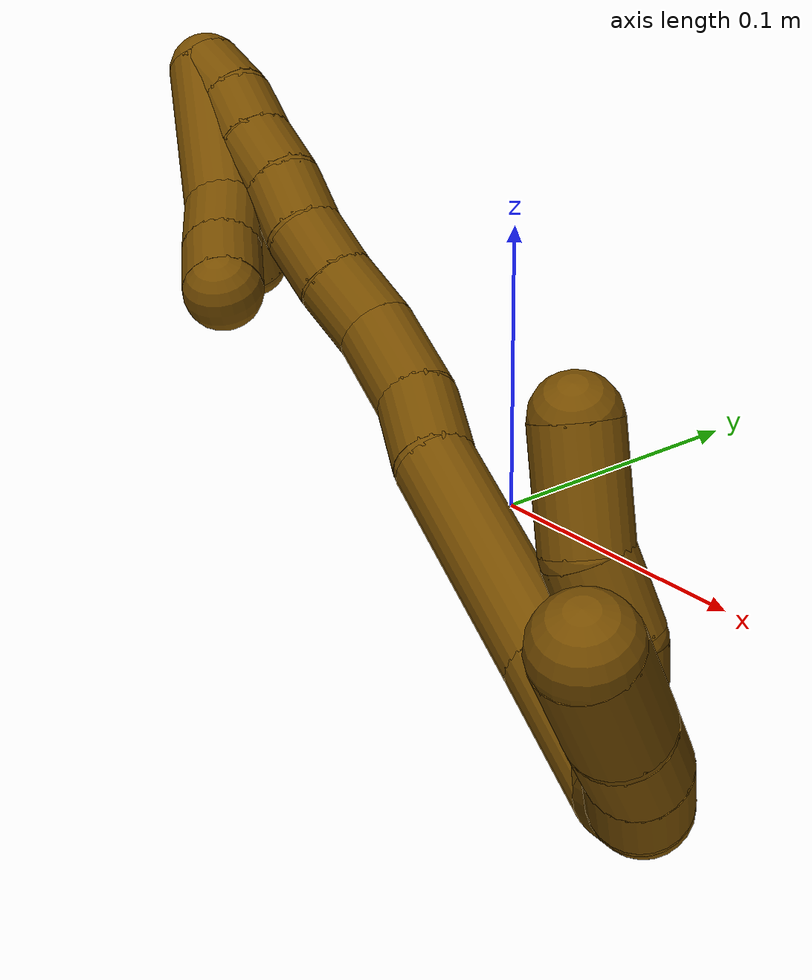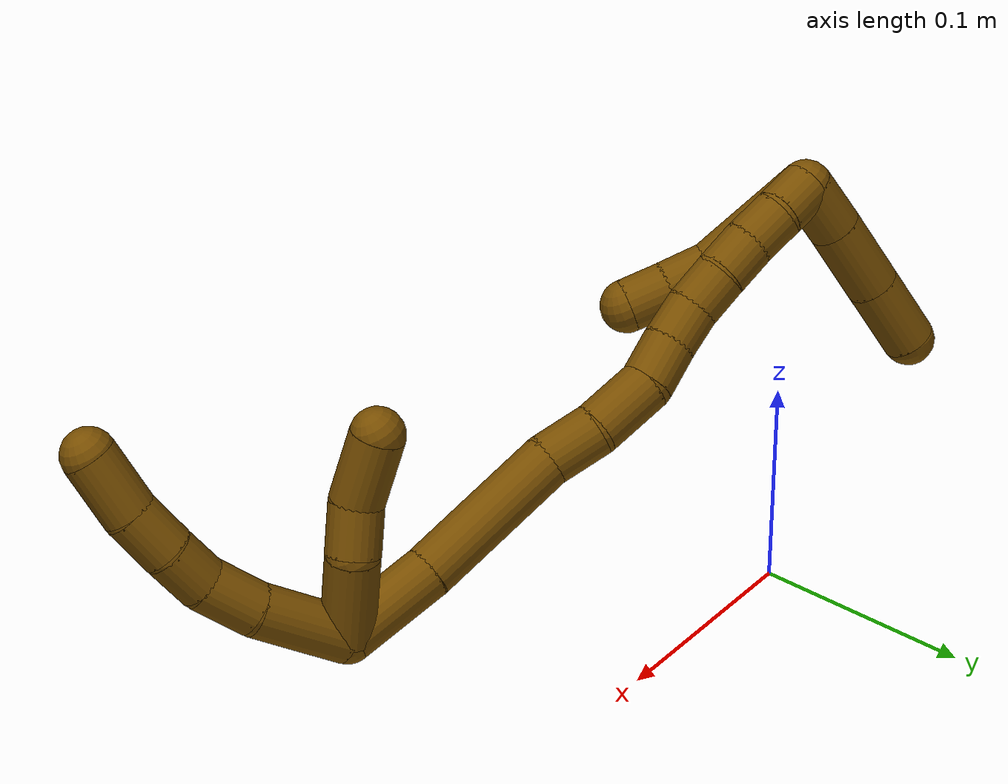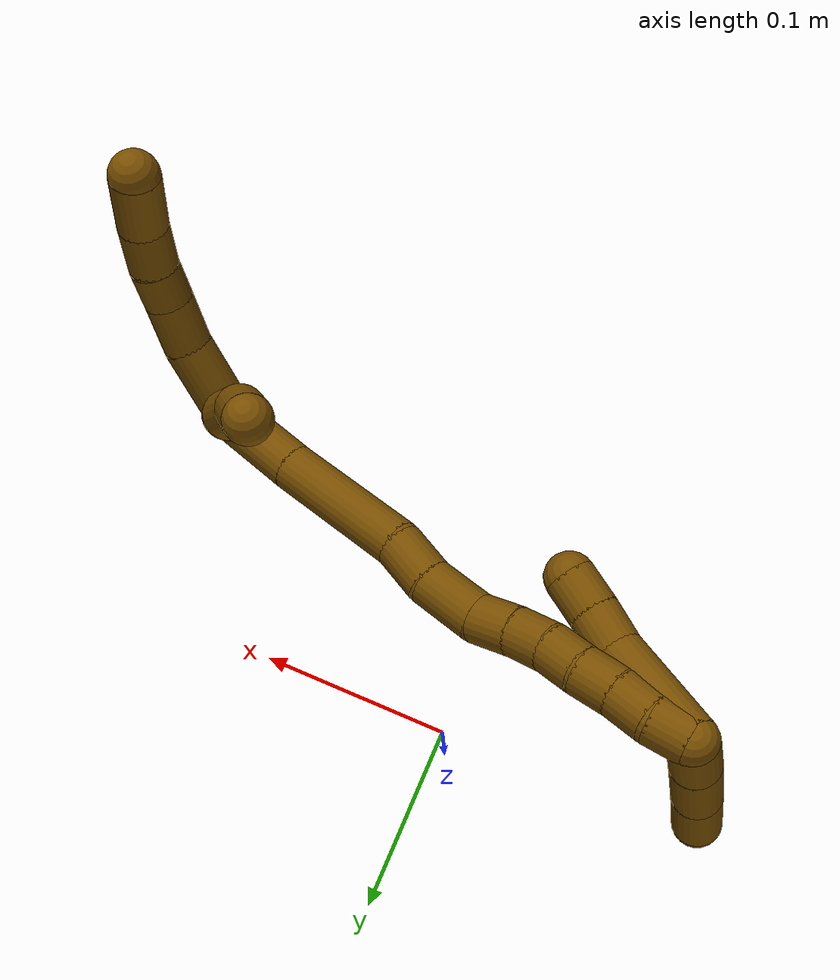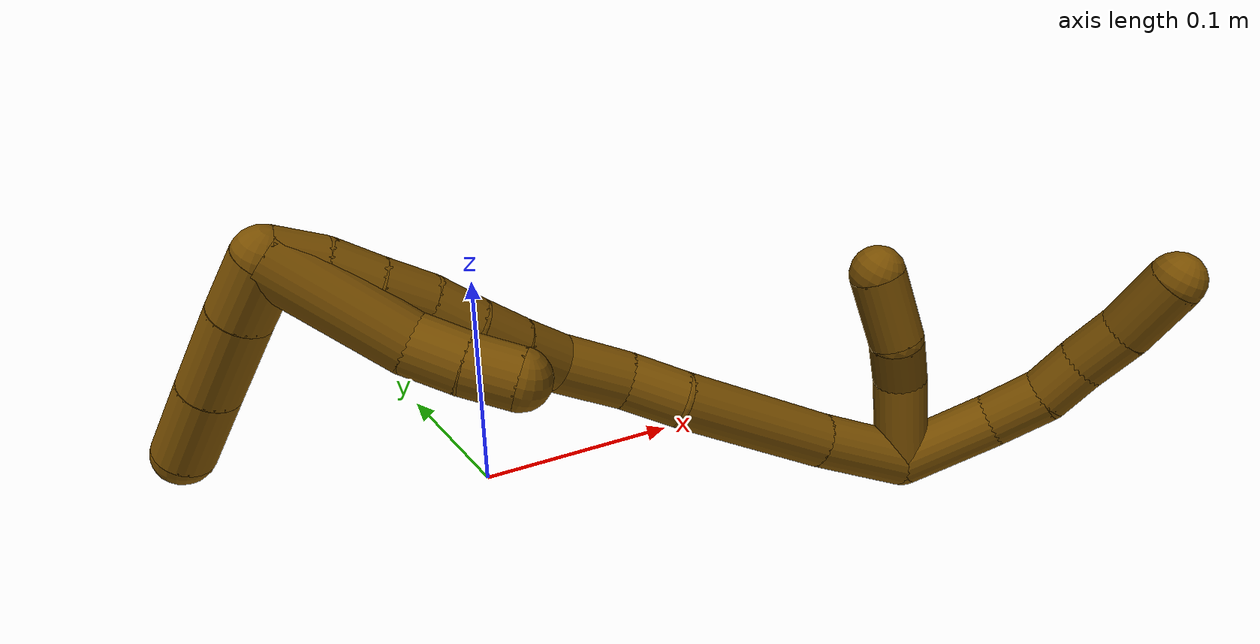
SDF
<sdf version="1.7">
 <world name="default">
  <model name="12">
   <static>0</static>
   <link name="12">
    <collision name="collision-cylinder-e_1_2_8">
     <pose>0.014161 -0.002124 -0.017831 3.02306 0.66775 2.80273</pose>
     <geometry><cylinder><radius>0.0125</radius><length>0.045737</length></cylinder></geometry>
     <surface>
      <friction><ode><mu>1.16</mu><mu2>1.16</mu2><slip1>0</slip1><slip2>0</slip2></ode></friction>
      <contact><ode><kp>1e+06</kp><kd>1</kd><max_vel>0</max_vel><min_depth>0.001</min_depth></ode></contact>
     </surface>
    </collision>
    <visual name="visual-cylinder-e_1_2_8">
     <pose>0.014161 -0.002124 -0.017831 3.02306 0.66775 2.80273</pose>
     <geometry><cylinder><radius>0.0125</radius><length>0.045737</length></cylinder></geometry>
     <material><ambient>0.466667 0.301961 0 1</ambient></material>
    </visual>
    <collision name="collision-cylinder-e_2_8_9">
     <pose>0.035273 -0.003644 -0.047157 -3.08919 0.543319 -2.95397</pose>
     <geometry><cylinder><radius>0.0125</radius><length>0.026895</length></cylinder></geometry>
     <surface>
      <friction><ode><mu>1.16</mu><mu2>1.16</mu2><slip1>0</slip1><slip2>0</slip2></ode></friction>
      <contact><ode><kp>1e+06</kp><kd>1</kd><max_vel>0</max_vel><min_depth>0.001</min_depth></ode></contact>
     </surface>
    </collision>
    <visual name="visual-cylinder-e_2_8_9">
     <pose>0.035273 -0.003644 -0.047157 -3.08919 0.543319 -2.95397</pose>
     <geometry><cylinder><radius>0.0125</radius><length>0.026895</length></cylinder></geometry>
     <material><ambient>0.466667 0.301961 0 1</ambient></material>
    </visual>
    <collision name="collision-cylinder-e_3_9_10">
     <pose>0.045169 -0.002854 -0.069402 -3.12419 0.267194 -3.01229</pose>
     <geometry><cylinder><radius>0.0125</radius><length>0.022294</length></cylinder></geometry>
     <surface>
      <friction><ode><mu>1.16</mu><mu2>1.16</mu2><slip1>0</slip1><slip2>0</slip2></ode></friction>
      <contact><ode><kp>1e+06</kp><kd>1</kd><max_vel>0</max_vel><min_depth>0.001</min_depth></ode></contact>
     </surface>
    </collision>
    <visual name="visual-cylinder-e_3_9_10">
     <pose>0.045169 -0.002854 -0.069402 -3.12419 0.267194 -3.01229</pose>
     <geometry><cylinder><radius>0.0125</radius><length>0.022294</length></cylinder></geometry>
     <material><ambient>0.466667 0.301961 0 1</ambient></material>
    </visual>
    <collision name="collision-cylinder-e_4_10_11">
     <pose>0.051204 -0.000966 -0.091627 -2.99442 0.260469 -2.11626</pose>
     <geometry><cylinder><radius>0.0125</radius><length>0.024011</length></cylinder></geometry>
     <surface>
      <friction><ode><mu>1.16</mu><mu2>1.16</mu2><slip1>0</slip1><slip2>0</slip2></ode></friction>
      <contact><ode><kp>1e+06</kp><kd>1</kd><max_vel>0</max_vel><min_depth>0.001</min_depth></ode></contact>
     </surface>
    </collision>
    <visual name="visual-cylinder-e_4_10_11">
     <pose>0.051204 -0.000966 -0.091627 -2.99442 0.260469 -2.11626</pose>
     <geometry><cylinder><radius>0.0125</radius><length>0.024011</length></cylinder></geometry>
     <material><ambient>0.466667 0.301961 0 1</ambient></material>
    </visual>
    <collision name="collision-cylinder-e_5_11_6">
     <pose>0.055867 0.003533 -0.118298 -2.9595 0.101339 -1.01407</pose>
     <geometry><cylinder><radius>0.0125</radius><length>0.031063</length></cylinder></geometry>
     <surface>
      <friction><ode><mu>1.16</mu><mu2>1.16</mu2><slip1>0</slip1><slip2>0</slip2></ode></friction>
      <contact><ode><kp>1e+06</kp><kd>1</kd><max_vel>0</max_vel><min_depth>0.001</min_depth></ode></contact>
     </surface>
    </collision>
    <visual name="visual-cylinder-e_5_11_6">
     <pose>0.055867 0.003533 -0.118298 -2.9595 0.101339 -1.01407</pose>
     <geometry><cylinder><radius>0.0125</radius><length>0.031063</length></cylinder></geometry>
     <material><ambient>0.466667 0.301961 0 1</ambient></material>
    </visual>
    <collision name="collision-cylinder-e_1_2_12">
     <pose>-0.009983 -0.001762 -0.01883 3.04829 -0.485675 -2.76907</pose>
     <geometry><cylinder><radius>0.0125</radius><length>0.04277</length></cylinder></geometry>
     <surface>
      <friction><ode><mu>1.16</mu><mu2>1.16</mu2><slip1>0</slip1><slip2>0</slip2></ode></friction>
      <contact><ode><kp>1e+06</kp><kd>1</kd><max_vel>0</max_vel><min_depth>0.001</min_depth></ode></contact>
     </surface>
    </collision>
    <visual name="visual-cylinder-e_1_2_12">
     <pose>-0.009983 -0.001762 -0.01883 3.04829 -0.485675 -2.76907</pose>
     <geometry><cylinder><radius>0.0125</radius><length>0.04277</length></cylinder></geometry>
     <material><ambient>0.466667 0.301961 0 1</ambient></material>
    </visual>
    <collision name="collision-cylinder-e_2_12_13">
     <pose>-0.026056 -0.000477 -0.047502 -2.8414 -0.533904 2.1313</pose>
     <geometry><cylinder><radius>0.0125</radius><length>0.023938</length></cylinder></geometry>
     <surface>
      <friction><ode><mu>1.16</mu><mu2>1.16</mu2><slip1>0</slip1><slip2>0</slip2></ode></friction>
      <contact><ode><kp>1e+06</kp><kd>1</kd><max_vel>0</max_vel><min_depth>0.001</min_depth></ode></contact>
     </surface>
    </collision>
    <visual name="visual-cylinder-e_2_12_13">
     <pose>-0.026056 -0.000477 -0.047502 -2.8414 -0.533904 2.1313</pose>
     <geometry><cylinder><radius>0.0125</radius><length>0.023938</length></cylinder></geometry>
     <material><ambient>0.466667 0.301961 0 1</ambient></material>
    </visual>
    <collision name="collision-cylinder-e_3_13_5">
     <pose>-0.043105 0.002352 -0.069873 3.12423 -0.718572 -3.09538</pose>
     <geometry><cylinder><radius>0.0125</radius><length>0.033292</length></cylinder></geometry>
     <surface>
      <friction><ode><mu>1.16</mu><mu2>1.16</mu2><slip1>0</slip1><slip2>0</slip2></ode></friction>
      <contact><ode><kp>1e+06</kp><kd>1</kd><max_vel>0</max_vel><min_depth>0.001</min_depth></ode></contact>
     </surface>
    </collision>
    <visual name="visual-cylinder-e_3_13_5">
     <pose>-0.043105 0.002352 -0.069873 3.12423 -0.718572 -3.09538</pose>
     <geometry><cylinder><radius>0.0125</radius><length>0.033292</length></cylinder></geometry>
     <material><ambient>0.466667 0.301961 0 1</ambient></material>
    </visual>
    <collision name="collision-cylinder-e_1_2_14">
     <pose>-0.021647 0.007808 -0.000741 -1.66545 -1.22316 1.31362</pose>
     <geometry><cylinder><radius>0.0125</radius><length>0.046048</length></cylinder></geometry>
     <surface>
      <friction><ode><mu>1.16</mu><mu2>1.16</mu2><slip1>0</slip1><slip2>0</slip2></ode></friction>
      <contact><ode><kp>1e+06</kp><kd>1</kd><max_vel>0</max_vel><min_depth>0.001</min_depth></ode></contact>
     </surface>
    </collision>
    <visual name="visual-cylinder-e_1_2_14">
     <pose>-0.021647 0.007808 -0.000741 -1.66545 -1.22316 1.31362</pose>
     <geometry><cylinder><radius>0.0125</radius><length>0.046048</length></cylinder></geometry>
     <material><ambient>0.466667 0.301961 0 1</ambient></material>
    </visual>
    <collision name="collision-cylinder-e_2_14_15">
     <pose>-0.077637 0.029008 -0.005527 -1.8641 -1.18402 1.47176</pose>
     <geometry><cylinder><radius>0.0125</radius><length>0.074166</length></cylinder></geometry>
     <surface>
      <friction><ode><mu>1.16</mu><mu2>1.16</mu2><slip1>0</slip1><slip2>0</slip2></ode></friction>
      <contact><ode><kp>1e+06</kp><kd>1</kd><max_vel>0</max_vel><min_depth>0.001</min_depth></ode></contact>
     </surface>
    </collision>
    <visual name="visual-cylinder-e_2_14_15">
     <pose>-0.077637 0.029008 -0.005527 -1.8641 -1.18402 1.47176</pose>
     <geometry><cylinder><radius>0.0125</radius><length>0.074166</length></cylinder></geometry>
     <material><ambient>0.466667 0.301961 0 1</ambient></material>
    </visual>
    <collision name="collision-cylinder-e_3_15_16">
     <pose>-0.124767 0.044519 -0.00991 -1.72945 -1.40434 1.5629</pose>
     <geometry><cylinder><radius>0.0125</radius><length>0.025931</length></cylinder></geometry>
     <surface>
      <friction><ode><mu>1.16</mu><mu2>1.16</mu2><slip1>0</slip1><slip2>0</slip2></ode></friction>
      <contact><ode><kp>1e+06</kp><kd>1</kd><max_vel>0</max_vel><min_depth>0.001</min_depth></ode></contact>
     </surface>
    </collision>
    <visual name="visual-cylinder-e_3_15_16">
     <pose>-0.124767 0.044519 -0.00991 -1.72945 -1.40434 1.5629</pose>
     <geometry><cylinder><radius>0.0125</radius><length>0.025931</length></cylinder></geometry>
     <material><ambient>0.466667 0.301961 0 1</ambient></material>
    </visual>
    <collision name="collision-cylinder-e_4_16_17">
     <pose>-0.152154 0.05233 -0.011445 -1.77789 -1.19188 1.39202</pose>
     <geometry><cylinder><radius>0.0125</radius><length>0.031432</length></cylinder></geometry>
     <surface>
      <friction><ode><mu>1.16</mu><mu2>1.16</mu2><slip1>0</slip1><slip2>0</slip2></ode></friction>
      <contact><ode><kp>1e+06</kp><kd>1</kd><max_vel>0</max_vel><min_depth>0.001</min_depth></ode></contact>
     </surface>
    </collision>
    <visual name="visual-cylinder-e_4_16_17">
     <pose>-0.152154 0.05233 -0.011445 -1.77789 -1.19188 1.39202</pose>
     <geometry><cylinder><radius>0.0125</radius><length>0.031432</length></cylinder></geometry>
     <material><ambient>0.466667 0.301961 0 1</ambient></material>
    </visual>
    <collision name="collision-cylinder-e_5_17_18">
     <pose>-0.175427 0.063834 -0.016049 -2.10109 -0.910071 1.41369</pose>
     <geometry><cylinder><radius>0.0125</radius><length>0.021966</length></cylinder></geometry>
     <surface>
      <friction><ode><mu>1.16</mu><mu2>1.16</mu2><slip1>0</slip1><slip2>0</slip2></ode></friction>
      <contact><ode><kp>1e+06</kp><kd>1</kd><max_vel>0</max_vel><min_depth>0.001</min_depth></ode></contact>
     </surface>
    </collision>
    <visual name="visual-cylinder-e_5_17_18">
     <pose>-0.175427 0.063834 -0.016049 -2.10109 -0.910071 1.41369</pose>
     <geometry><cylinder><radius>0.0125</radius><length>0.021966</length></cylinder></geometry>
     <material><ambient>0.466667 0.301961 0 1</ambient></material>
    </visual>
    <collision name="collision-cylinder-e_6_18_19">
     <pose>-0.192549 0.074172 -0.0226 -2.17776 -0.993255 1.60625</pose>
     <geometry><cylinder><radius>0.0125</radius><length>0.020173</length></cylinder></geometry>
     <surface>
      <friction><ode><mu>1.16</mu><mu2>1.16</mu2><slip1>0</slip1><slip2>0</slip2></ode></friction>
      <contact><ode><kp>1e+06</kp><kd>1</kd><max_vel>0</max_vel><min_depth>0.001</min_depth></ode></contact>
     </surface>
    </collision>
    <visual name="visual-cylinder-e_6_18_19">
     <pose>-0.192549 0.074172 -0.0226 -2.17776 -0.993255 1.60625</pose>
     <geometry><cylinder><radius>0.0125</radius><length>0.020173</length></cylinder></geometry>
     <material><ambient>0.466667 0.301961 0 1</ambient></material>
    </visual>
    <collision name="collision-cylinder-e_7_19_20">
     <pose>-0.210136 0.081804 -0.028455 -2.28835 -1.14649 1.91464</pose>
     <geometry><cylinder><radius>0.0125</radius><length>0.020051</length></cylinder></geometry>
     <surface>
      <friction><ode><mu>1.16</mu><mu2>1.16</mu2><slip1>0</slip1><slip2>0</slip2></ode></friction>
      <contact><ode><kp>1e+06</kp><kd>1</kd><max_vel>0</max_vel><min_depth>0.001</min_depth></ode></contact>
     </surface>
    </collision>
    <visual name="visual-cylinder-e_7_19_20">
     <pose>-0.210136 0.081804 -0.028455 -2.28835 -1.14649 1.91464</pose>
     <geometry><cylinder><radius>0.0125</radius><length>0.020051</length></cylinder></geometry>
     <material><ambient>0.466667 0.301961 0 1</ambient></material>
    </visual>
    <collision name="collision-cylinder-e_8_20_21">
     <pose>-0.228287 0.089135 -0.032915 -1.96312 -1.10175 1.48643</pose>
     <geometry><cylinder><radius>0.0125</radius><length>0.02021</length></cylinder></geometry>
     <surface>
      <friction><ode><mu>1.16</mu><mu2>1.16</mu2><slip1>0</slip1><slip2>0</slip2></ode></friction>
      <contact><ode><kp>1e+06</kp><kd>1</kd><max_vel>0</max_vel><min_depth>0.001</min_depth></ode></contact>
     </surface>
    </collision>
    <visual name="visual-cylinder-e_8_20_21">
     <pose>-0.228287 0.089135 -0.032915 -1.96312 -1.10175 1.48643</pose>
     <geometry><cylinder><radius>0.0125</radius><length>0.02021</length></cylinder></geometry>
     <material><ambient>0.466667 0.301961 0 1</ambient></material>
    </visual>
    <collision name="collision-cylinder-e_9_21_22">
     <pose>-0.246613 0.096642 -0.036244 -2.0197 -1.19748 1.65319</pose>
     <geometry><cylinder><radius>0.0125</radius><length>0.020001</length></cylinder></geometry>
     <surface>
      <friction><ode><mu>1.16</mu><mu2>1.16</mu2><slip1>0</slip1><slip2>0</slip2></ode></friction>
      <contact><ode><kp>1e+06</kp><kd>1</kd><max_vel>0</max_vel><min_depth>0.001</min_depth></ode></contact>
     </surface>
    </collision>
    <visual name="visual-cylinder-e_9_21_22">
     <pose>-0.246613 0.096642 -0.036244 -2.0197 -1.19748 1.65319</pose>
     <geometry><cylinder><radius>0.0125</radius><length>0.020001</length></cylinder></geometry>
     <material><ambient>0.466667 0.301961 0 1</ambient></material>
    </visual>
    <collision name="collision-cylinder-e_10_22_1">
     <pose>-0.264594 0.104909 -0.038314 -1.66812 -1.0472 1.13361</pose>
     <geometry><cylinder><radius>0.0125</radius><length>0.020021</length></cylinder></geometry>
     <surface>
      <friction><ode><mu>1.16</mu><mu2>1.16</mu2><slip1>0</slip1><slip2>0</slip2></ode></friction>
      <contact><ode><kp>1e+06</kp><kd>1</kd><max_vel>0</max_vel><min_depth>0.001</min_depth></ode></contact>
     </surface>
    </collision>
    <visual name="visual-cylinder-e_10_22_1">
     <pose>-0.264594 0.104909 -0.038314 -1.66812 -1.0472 1.13361</pose>
     <geometry><cylinder><radius>0.0125</radius><length>0.020021</length></cylinder></geometry>
     <material><ambient>0.466667 0.301961 0 1</ambient></material>
    </visual>
    <collision name="collision-cylinder-e_1_1_23">
     <pose>-0.245373 0.107301 -0.032209 0.374405 1.32216 0.292571</pose>
     <geometry><cylinder><radius>0.0125</radius><length>0.057551</length></cylinder></geometry>
     <surface>
      <friction><ode><mu>1.16</mu><mu2>1.16</mu2><slip1>0</slip1><slip2>0</slip2></ode></friction>
      <contact><ode><kp>1e+06</kp><kd>1</kd><max_vel>0</max_vel><min_depth>0.001</min_depth></ode></contact>
     </surface>
    </collision>
    <visual name="visual-cylinder-e_1_1_23">
     <pose>-0.245373 0.107301 -0.032209 0.374405 1.32216 0.292571</pose>
     <geometry><cylinder><radius>0.0125</radius><length>0.057551</length></cylinder></geometry>
     <material><ambient>0.466667 0.301961 0 1</ambient></material>
    </visual>
    <collision name="collision-cylinder-e_2_23_24">
     <pose>-0.206636 0.104647 -0.02601 2.97781 1.53429 2.97174</pose>
     <geometry><cylinder><radius>0.0125</radius><length>0.021705</length></cylinder></geometry>
     <surface>
      <friction><ode><mu>1.16</mu><mu2>1.16</mu2><slip1>0</slip1><slip2>0</slip2></ode></friction>
      <contact><ode><kp>1e+06</kp><kd>1</kd><max_vel>0</max_vel><min_depth>0.001</min_depth></ode></contact>
     </surface>
    </collision>
    <visual name="visual-cylinder-e_2_23_24">
     <pose>-0.206636 0.104647 -0.02601 2.97781 1.53429 2.97174</pose>
     <geometry><cylinder><radius>0.0125</radius><length>0.021705</length></cylinder></geometry>
     <material><ambient>0.466667 0.301961 0 1</ambient></material>
    </visual>
    <collision name="collision-cylinder-e_3_24_4">
     <pose>-0.185494 0.103854 -0.027403 2.51319 1.45105 2.43915</pose>
     <geometry><cylinder><radius>0.0125</radius><length>0.020744</length></cylinder></geometry>
     <surface>
      <friction><ode><mu>1.16</mu><mu2>1.16</mu2><slip1>0</slip1><slip2>0</slip2></ode></friction>
      <contact><ode><kp>1e+06</kp><kd>1</kd><max_vel>0</max_vel><min_depth>0.001</min_depth></ode></contact>
     </surface>
    </collision>
    <visual name="visual-cylinder-e_3_24_4">
     <pose>-0.185494 0.103854 -0.027403 2.51319 1.45105 2.43915</pose>
     <geometry><cylinder><radius>0.0125</radius><length>0.020744</length></cylinder></geometry>
     <material><ambient>0.466667 0.301961 0 1</ambient></material>
    </visual>
    <collision name="collision-cylinder-e_1_1_25">
     <pose>-0.275451 0.110402 -0.025702 -0.038973 -0.165368 0.00323</pose>
     <geometry><cylinder><radius>0.0125</radius><length>0.026578</length></cylinder></geometry>
     <surface>
      <friction><ode><mu>1.16</mu><mu2>1.16</mu2><slip1>0</slip1><slip2>0</slip2></ode></friction>
      <contact><ode><kp>1e+06</kp><kd>1</kd><max_vel>0</max_vel><min_depth>0.001</min_depth></ode></contact>
     </surface>
    </collision>
    <visual name="visual-cylinder-e_1_1_25">
     <pose>-0.275451 0.110402 -0.025702 -0.038973 -0.165368 0.00323</pose>
     <geometry><cylinder><radius>0.0125</radius><length>0.026578</length></cylinder></geometry>
     <material><ambient>0.466667 0.301961 0 1</ambient></material>
    </visual>
    <collision name="collision-cylinder-e_2_25_26">
     <pose>-0.280357 0.111165 0.005999 -0.013572 -0.145105 0.000986</pose>
     <geometry><cylinder><radius>0.0125</radius><length>0.037607</length></cylinder></geometry>
     <surface>
      <friction><ode><mu>1.16</mu><mu2>1.16</mu2><slip1>0</slip1><slip2>0</slip2></ode></friction>
      <contact><ode><kp>1e+06</kp><kd>1</kd><max_vel>0</max_vel><min_depth>0.001</min_depth></ode></contact>
     </surface>
    </collision>
    <visual name="visual-cylinder-e_2_25_26">
     <pose>-0.280357 0.111165 0.005999 -0.013572 -0.145105 0.000986</pose>
     <geometry><cylinder><radius>0.0125</radius><length>0.037607</length></cylinder></geometry>
     <material><ambient>0.466667 0.301961 0 1</ambient></material>
    </visual>
    <collision name="collision-cylinder-e_3_26_3">
     <pose>-0.285649 0.111275 0.042325 0.008048 -0.144177 -0.000581</pose>
     <geometry><cylinder><radius>0.0125</radius><length>0.035815</length></cylinder></geometry>
     <surface>
      <friction><ode><mu>1.16</mu><mu2>1.16</mu2><slip1>0</slip1><slip2>0</slip2></ode></friction>
      <contact><ode><kp>1e+06</kp><kd>1</kd><max_vel>0</max_vel><min_depth>0.001</min_depth></ode></contact>
     </surface>
    </collision>
    <visual name="visual-cylinder-e_3_26_3">
     <pose>-0.285649 0.111275 0.042325 0.008048 -0.144177 -0.000581</pose>
     <geometry><cylinder><radius>0.0125</radius><length>0.035815</length></cylinder></geometry>
     <material><ambient>0.466667 0.301961 0 1</ambient></material>
    </visual>
    <collision name="collision-sphere-3">
     <pose>-0.288222 0.111132 0.060046 0 -0 0</pose>
     <geometry><sphere><radius>0.0125</radius></sphere></geometry>
     <surface>
      <friction><ode><mu>1.16</mu><mu2>1.16</mu2><slip1>0</slip1><slip2>0</slip2></ode></friction>
      <contact><ode><kp>1e+06</kp><kd>1</kd><max_vel>0</max_vel><min_depth>0.001</min_depth></ode></contact>
     </surface>
    </collision>
    <visual name="visual-sphere-3">
     <pose>-0.288222 0.111132 0.060046 0 -0 0</pose>
     <geometry><sphere><radius>0.0125</radius></sphere></geometry>
     <material><ambient>0.466667 0.301961 0 1</ambient></material>
    </visual>
    <collision name="collision-sphere-26">
     <pose>-0.283076 0.111417 0.024604 0 -0 0</pose>
     <geometry><sphere><radius>0.0125</radius></sphere></geometry>
     <surface>
      <friction><ode><mu>1.16</mu><mu2>1.16</mu2><slip1>0</slip1><slip2>0</slip2></ode></friction>
      <contact><ode><kp>1e+06</kp><kd>1</kd><max_vel>0</max_vel><min_depth>0.001</min_depth></ode></contact>
     </surface>
    </collision>
    <visual name="visual-sphere-26">
     <pose>-0.283076 0.111417 0.024604 0 -0 0</pose>
     <geometry><sphere><radius>0.0125</radius></sphere></geometry>
     <material><ambient>0.466667 0.301961 0 1</ambient></material>
    </visual>
    <collision name="collision-sphere-25">
     <pose>-0.277638 0.110912 -0.012605 0 -0 0</pose>
     <geometry><sphere><radius>0.0125</radius></sphere></geometry>
     <surface>
      <friction><ode><mu>1.16</mu><mu2>1.16</mu2><slip1>0</slip1><slip2>0</slip2></ode></friction>
      <contact><ode><kp>1e+06</kp><kd>1</kd><max_vel>0</max_vel><min_depth>0.001</min_depth></ode></contact>
     </surface>
    </collision>
    <visual name="visual-sphere-25">
     <pose>-0.277638 0.110912 -0.012605 0 -0 0</pose>
     <geometry><sphere><radius>0.0125</radius></sphere></geometry>
     <material><ambient>0.466667 0.301961 0 1</ambient></material>
    </visual>
    <collision name="collision-sphere-4">
     <pose>-0.175196 0.103125 -0.028405 0 -0 0</pose>
     <geometry><sphere><radius>0.0125</radius></sphere></geometry>
     <surface>
      <friction><ode><mu>1.16</mu><mu2>1.16</mu2><slip1>0</slip1><slip2>0</slip2></ode></friction>
      <contact><ode><kp>1e+06</kp><kd>1</kd><max_vel>0</max_vel><min_depth>0.001</min_depth></ode></contact>
     </surface>
    </collision>
    <visual name="visual-sphere-4">
     <pose>-0.175196 0.103125 -0.028405 0 -0 0</pose>
     <geometry><sphere><radius>0.0125</radius></sphere></geometry>
     <material><ambient>0.466667 0.301961 0 1</ambient></material>
    </visual>
    <collision name="collision-sphere-24">
     <pose>-0.195791 0.104582 -0.0264 0 -0 0</pose>
     <geometry><sphere><radius>0.0125</radius></sphere></geometry>
     <surface>
      <friction><ode><mu>1.16</mu><mu2>1.16</mu2><slip1>0</slip1><slip2>0</slip2></ode></friction>
      <contact><ode><kp>1e+06</kp><kd>1</kd><max_vel>0</max_vel><min_depth>0.001</min_depth></ode></contact>
     </surface>
    </collision>
    <visual name="visual-sphere-24">
     <pose>-0.195791 0.104582 -0.0264 0 -0 0</pose>
     <geometry><sphere><radius>0.0125</radius></sphere></geometry>
     <material><ambient>0.466667 0.301961 0 1</ambient></material>
    </visual>
    <collision name="collision-sphere-23">
     <pose>-0.217482 0.104711 -0.025619 0 -0 0</pose>
     <geometry><sphere><radius>0.0125</radius></sphere></geometry>
     <surface>
      <friction><ode><mu>1.16</mu><mu2>1.16</mu2><slip1>0</slip1><slip2>0</slip2></ode></friction>
      <contact><ode><kp>1e+06</kp><kd>1</kd><max_vel>0</max_vel><min_depth>0.001</min_depth></ode></contact>
     </surface>
    </collision>
    <visual name="visual-sphere-23">
     <pose>-0.217482 0.104711 -0.025619 0 -0 0</pose>
     <geometry><sphere><radius>0.0125</radius></sphere></geometry>
     <material><ambient>0.466667 0.301961 0 1</ambient></material>
    </visual>
    <collision name="collision-sphere-1">
     <pose>-0.273263 0.109891 -0.0388 0 -0 0</pose>
     <geometry><sphere><radius>0.0125</radius></sphere></geometry>
     <surface>
      <friction><ode><mu>1.16</mu><mu2>1.16</mu2><slip1>0</slip1><slip2>0</slip2></ode></friction>
      <contact><ode><kp>1e+06</kp><kd>1</kd><max_vel>0</max_vel><min_depth>0.001</min_depth></ode></contact>
     </surface>
    </collision>
    <visual name="visual-sphere-1">
     <pose>-0.273263 0.109891 -0.0388 0 -0 0</pose>
     <geometry><sphere><radius>0.0125</radius></sphere></geometry>
     <material><ambient>0.466667 0.301961 0 1</ambient></material>
    </visual>
    <collision name="collision-sphere-22">
     <pose>-0.255924 0.099928 -0.037827 0 -0 0</pose>
     <geometry><sphere><radius>0.0125</radius></sphere></geometry>
     <surface>
      <friction><ode><mu>1.16</mu><mu2>1.16</mu2><slip1>0</slip1><slip2>0</slip2></ode></friction>
      <contact><ode><kp>1e+06</kp><kd>1</kd><max_vel>0</max_vel><min_depth>0.001</min_depth></ode></contact>
     </surface>
    </collision>
    <visual name="visual-sphere-22">
     <pose>-0.255924 0.099928 -0.037827 0 -0 0</pose>
     <geometry><sphere><radius>0.0125</radius></sphere></geometry>
     <material><ambient>0.466667 0.301961 0 1</ambient></material>
    </visual>
    <collision name="collision-sphere-21">
     <pose>-0.237301 0.093356 -0.034662 0 -0 0</pose>
     <geometry><sphere><radius>0.0125</radius></sphere></geometry>
     <surface>
      <friction><ode><mu>1.16</mu><mu2>1.16</mu2><slip1>0</slip1><slip2>0</slip2></ode></friction>
      <contact><ode><kp>1e+06</kp><kd>1</kd><max_vel>0</max_vel><min_depth>0.001</min_depth></ode></contact>
     </surface>
    </collision>
    <visual name="visual-sphere-21">
     <pose>-0.237301 0.093356 -0.034662 0 -0 0</pose>
     <geometry><sphere><radius>0.0125</radius></sphere></geometry>
     <material><ambient>0.466667 0.301961 0 1</ambient></material>
    </visual>
    <collision name="collision-sphere-6">
     <pose>0.057438 0.006331 -0.133495 0 -0 0</pose>
     <geometry><sphere><radius>0.0125</radius></sphere></geometry>
     <surface>
      <friction><ode><mu>1.16</mu><mu2>1.16</mu2><slip1>0</slip1><slip2>0</slip2></ode></friction>
      <contact><ode><kp>1e+06</kp><kd>1</kd><max_vel>0</max_vel><min_depth>0.001</min_depth></ode></contact>
     </surface>
    </collision>
    <visual name="visual-sphere-6">
     <pose>0.057438 0.006331 -0.133495 0 -0 0</pose>
     <geometry><sphere><radius>0.0125</radius></sphere></geometry>
     <material><ambient>0.466667 0.301961 0 1</ambient></material>
    </visual>
    <collision name="collision-sphere-11">
     <pose>0.054295 0.000735 -0.103102 0 -0 0</pose>
     <geometry><sphere><radius>0.0125</radius></sphere></geometry>
     <surface>
      <friction><ode><mu>1.16</mu><mu2>1.16</mu2><slip1>0</slip1><slip2>0</slip2></ode></friction>
      <contact><ode><kp>1e+06</kp><kd>1</kd><max_vel>0</max_vel><min_depth>0.001</min_depth></ode></contact>
     </surface>
    </collision>
    <visual name="visual-sphere-11">
     <pose>0.054295 0.000735 -0.103102 0 -0 0</pose>
     <geometry><sphere><radius>0.0125</radius></sphere></geometry>
     <material><ambient>0.466667 0.301961 0 1</ambient></material>
    </visual>
    <collision name="collision-sphere-10">
     <pose>0.048112 -0.002667 -0.080152 0 -0 0</pose>
     <geometry><sphere><radius>0.0125</radius></sphere></geometry>
     <surface>
      <friction><ode><mu>1.16</mu><mu2>1.16</mu2><slip1>0</slip1><slip2>0</slip2></ode></friction>
      <contact><ode><kp>1e+06</kp><kd>1</kd><max_vel>0</max_vel><min_depth>0.001</min_depth></ode></contact>
     </surface>
    </collision>
    <visual name="visual-sphere-10">
     <pose>0.048112 -0.002667 -0.080152 0 -0 0</pose>
     <geometry><sphere><radius>0.0125</radius></sphere></geometry>
     <material><ambient>0.466667 0.301961 0 1</ambient></material>
    </visual>
    <collision name="collision-sphere-9">
     <pose>0.042226 -0.003041 -0.058652 0 -0 0</pose>
     <geometry><sphere><radius>0.0125</radius></sphere></geometry>
     <surface>
      <friction><ode><mu>1.16</mu><mu2>1.16</mu2><slip1>0</slip1><slip2>0</slip2></ode></friction>
      <contact><ode><kp>1e+06</kp><kd>1</kd><max_vel>0</max_vel><min_depth>0.001</min_depth></ode></contact>
     </surface>
    </collision>
    <visual name="visual-sphere-9">
     <pose>0.042226 -0.003041 -0.058652 0 -0 0</pose>
     <geometry><sphere><radius>0.0125</radius></sphere></geometry>
     <material><ambient>0.466667 0.301961 0 1</ambient></material>
    </visual>
    <collision name="collision-sphere-2">
     <geometry><sphere><radius>0.0125</radius></sphere></geometry>
     <surface>
      <friction><ode><mu>1.16</mu><mu2>1.16</mu2><slip1>0</slip1><slip2>0</slip2></ode></friction>
      <contact><ode><kp>1e+06</kp><kd>1</kd><max_vel>0</max_vel><min_depth>0.001</min_depth></ode></contact>
     </surface>
    </collision>
    <visual name="visual-sphere-2">
     <geometry><sphere><radius>0.0125</radius></sphere></geometry>
     <material><ambient>0.466667 0.301961 0 1</ambient></material>
    </visual>
    <collision name="collision-sphere-19">
     <pose>-0.201 0.078695 -0.025741 0 -0 0</pose>
     <geometry><sphere><radius>0.0125</radius></sphere></geometry>
     <surface>
      <friction><ode><mu>1.16</mu><mu2>1.16</mu2><slip1>0</slip1><slip2>0</slip2></ode></friction>
      <contact><ode><kp>1e+06</kp><kd>1</kd><max_vel>0</max_vel><min_depth>0.001</min_depth></ode></contact>
     </surface>
    </collision>
    <visual name="visual-sphere-19">
     <pose>-0.201 0.078695 -0.025741 0 -0 0</pose>
     <geometry><sphere><radius>0.0125</radius></sphere></geometry>
     <material><ambient>0.466667 0.301961 0 1</ambient></material>
    </visual>
    <collision name="collision-sphere-8">
     <pose>0.028321 -0.004247 -0.035661 0 -0 0</pose>
     <geometry><sphere><radius>0.0125</radius></sphere></geometry>
     <surface>
      <friction><ode><mu>1.16</mu><mu2>1.16</mu2><slip1>0</slip1><slip2>0</slip2></ode></friction>
      <contact><ode><kp>1e+06</kp><kd>1</kd><max_vel>0</max_vel><min_depth>0.001</min_depth></ode></contact>
     </surface>
    </collision>
    <visual name="visual-sphere-8">
     <pose>0.028321 -0.004247 -0.035661 0 -0 0</pose>
     <geometry><sphere><radius>0.0125</radius></sphere></geometry>
     <material><ambient>0.466667 0.301961 0 1</ambient></material>
    </visual>
    <collision name="collision-sphere-12">
     <pose>-0.019965 -0.003524 -0.03766 0 -0 0</pose>
     <geometry><sphere><radius>0.0125</radius></sphere></geometry>
     <surface>
      <friction><ode><mu>1.16</mu><mu2>1.16</mu2><slip1>0</slip1><slip2>0</slip2></ode></friction>
      <contact><ode><kp>1e+06</kp><kd>1</kd><max_vel>0</max_vel><min_depth>0.001</min_depth></ode></contact>
     </surface>
    </collision>
    <visual name="visual-sphere-12">
     <pose>-0.019965 -0.003524 -0.03766 0 -0 0</pose>
     <geometry><sphere><radius>0.0125</radius></sphere></geometry>
     <material><ambient>0.466667 0.301961 0 1</ambient></material>
    </visual>
    <collision name="collision-sphere-13">
     <pose>-0.032147 0.00257 -0.057344 0 -0 0</pose>
     <geometry><sphere><radius>0.0125</radius></sphere></geometry>
     <surface>
      <friction><ode><mu>1.16</mu><mu2>1.16</mu2><slip1>0</slip1><slip2>0</slip2></ode></friction>
      <contact><ode><kp>1e+06</kp><kd>1</kd><max_vel>0</max_vel><min_depth>0.001</min_depth></ode></contact>
     </surface>
    </collision>
    <visual name="visual-sphere-13">
     <pose>-0.032147 0.00257 -0.057344 0 -0 0</pose>
     <geometry><sphere><radius>0.0125</radius></sphere></geometry>
     <material><ambient>0.466667 0.301961 0 1</ambient></material>
    </visual>
    <collision name="collision-sphere-5">
     <pose>-0.054064 0.002135 -0.082401 0 -0 0</pose>
     <geometry><sphere><radius>0.0125</radius></sphere></geometry>
     <surface>
      <friction><ode><mu>1.16</mu><mu2>1.16</mu2><slip1>0</slip1><slip2>0</slip2></ode></friction>
      <contact><ode><kp>1e+06</kp><kd>1</kd><max_vel>0</max_vel><min_depth>0.001</min_depth></ode></contact>
     </surface>
    </collision>
    <visual name="visual-sphere-5">
     <pose>-0.054064 0.002135 -0.082401 0 -0 0</pose>
     <geometry><sphere><radius>0.0125</radius></sphere></geometry>
     <material><ambient>0.466667 0.301961 0 1</ambient></material>
    </visual>
    <collision name="collision-sphere-14">
     <pose>-0.043293 0.015617 -0.001483 0 -0 0</pose>
     <geometry><sphere><radius>0.0125</radius></sphere></geometry>
     <surface>
      <friction><ode><mu>1.16</mu><mu2>1.16</mu2><slip1>0</slip1><slip2>0</slip2></ode></friction>
      <contact><ode><kp>1e+06</kp><kd>1</kd><max_vel>0</max_vel><min_depth>0.001</min_depth></ode></contact>
     </surface>
    </collision>
    <visual name="visual-sphere-14">
     <pose>-0.043293 0.015617 -0.001483 0 -0 0</pose>
     <geometry><sphere><radius>0.0125</radius></sphere></geometry>
     <material><ambient>0.466667 0.301961 0 1</ambient></material>
    </visual>
    <collision name="collision-sphere-15">
     <pose>-0.111981 0.042398 -0.009571 0 -0 0</pose>
     <geometry><sphere><radius>0.0125</radius></sphere></geometry>
     <surface>
      <friction><ode><mu>1.16</mu><mu2>1.16</mu2><slip1>0</slip1><slip2>0</slip2></ode></friction>
      <contact><ode><kp>1e+06</kp><kd>1</kd><max_vel>0</max_vel><min_depth>0.001</min_depth></ode></contact>
     </surface>
    </collision>
    <visual name="visual-sphere-15">
     <pose>-0.111981 0.042398 -0.009571 0 -0 0</pose>
     <geometry><sphere><radius>0.0125</radius></sphere></geometry>
     <material><ambient>0.466667 0.301961 0 1</ambient></material>
    </visual>
    <collision name="collision-sphere-16">
     <pose>-0.137553 0.04664 -0.01025 0 -0 0</pose>
     <geometry><sphere><radius>0.0125</radius></sphere></geometry>
     <surface>
      <friction><ode><mu>1.16</mu><mu2>1.16</mu2><slip1>0</slip1><slip2>0</slip2></ode></friction>
      <contact><ode><kp>1e+06</kp><kd>1</kd><max_vel>0</max_vel><min_depth>0.001</min_depth></ode></contact>
     </surface>
    </collision>
    <visual name="visual-sphere-16">
     <pose>-0.137553 0.04664 -0.01025 0 -0 0</pose>
     <geometry><sphere><radius>0.0125</radius></sphere></geometry>
     <material><ambient>0.466667 0.301961 0 1</ambient></material>
    </visual>
    <collision name="collision-sphere-17">
     <pose>-0.166755 0.058019 -0.01264 0 -0 0</pose>
     <geometry><sphere><radius>0.0125</radius></sphere></geometry>
     <surface>
      <friction><ode><mu>1.16</mu><mu2>1.16</mu2><slip1>0</slip1><slip2>0</slip2></ode></friction>
      <contact><ode><kp>1e+06</kp><kd>1</kd><max_vel>0</max_vel><min_depth>0.001</min_depth></ode></contact>
     </surface>
    </collision>
    <visual name="visual-sphere-17">
     <pose>-0.166755 0.058019 -0.01264 0 -0 0</pose>
     <geometry><sphere><radius>0.0125</radius></sphere></geometry>
     <material><ambient>0.466667 0.301961 0 1</ambient></material>
    </visual>
    <collision name="collision-sphere-18">
     <pose>-0.184099 0.069648 -0.019459 0 -0 0</pose>
     <geometry><sphere><radius>0.0125</radius></sphere></geometry>
     <surface>
      <friction><ode><mu>1.16</mu><mu2>1.16</mu2><slip1>0</slip1><slip2>0</slip2></ode></friction>
      <contact><ode><kp>1e+06</kp><kd>1</kd><max_vel>0</max_vel><min_depth>0.001</min_depth></ode></contact>
     </surface>
    </collision>
    <visual name="visual-sphere-18">
     <pose>-0.184099 0.069648 -0.019459 0 -0 0</pose>
     <geometry><sphere><radius>0.0125</radius></sphere></geometry>
     <material><ambient>0.466667 0.301961 0 1</ambient></material>
    </visual>
    <collision name="collision-sphere-20">
     <pose>-0.219273 0.084914 -0.031169 0 -0 0</pose>
     <geometry><sphere><radius>0.0125</radius></sphere></geometry>
     <surface>
      <friction><ode><mu>1.16</mu><mu2>1.16</mu2><slip1>0</slip1><slip2>0</slip2></ode></friction>
      <contact><ode><kp>1e+06</kp><kd>1</kd><max_vel>0</max_vel><min_depth>0.001</min_depth></ode></contact>
     </surface>
    </collision>
    <visual name="visual-sphere-20">
     <pose>-0.219273 0.084914 -0.031169 0 -0 0</pose>
     <geometry><sphere><radius>0.0125</radius></sphere></geometry>
     <material><ambient>0.466667 0.301961 0 1</ambient></material>
    </visual>
    <inertial>
     <pose>-0.118713 0.049606 -0.027066 0 -0 0</pose>
     <mass>0.75</mass>
     <inertia><ixx>5e-06</ixx><ixy>0</ixy><ixz>0</ixz><iyy>0.000143</iyy><iyz>0</iyz><izz>5e-06</izz></inertia>
    </inertial>
   </link>
   <pose>0.166391 -0.10956 0.012236 -3.02683 0.395176 -0.651305</pose>
  </model>
 </world>
</sdf>
